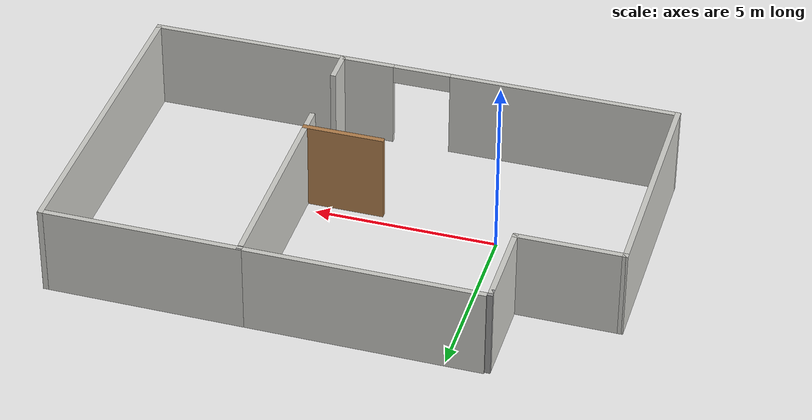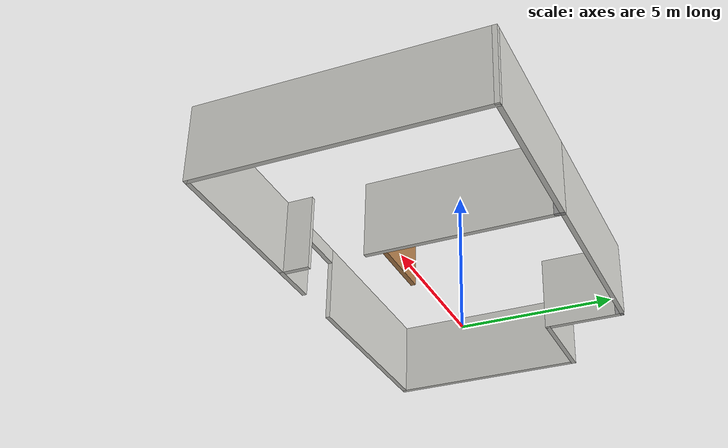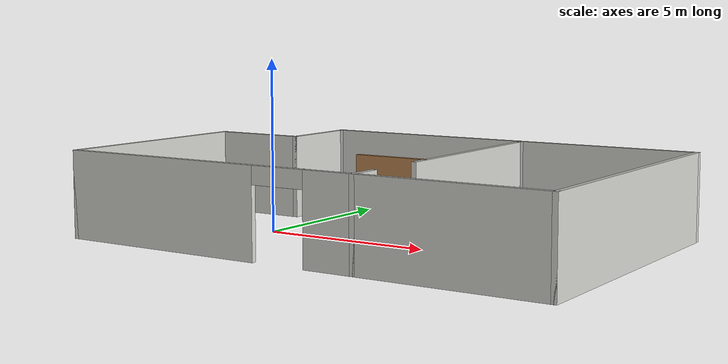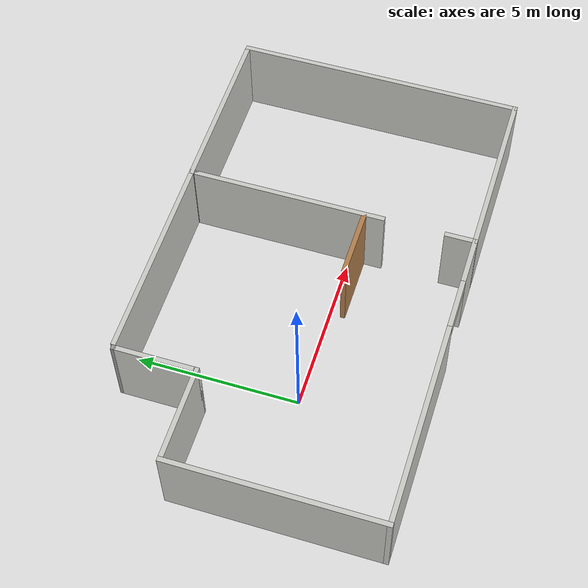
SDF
<?xml version='1.0'?>
<sdf version='1.6'>
  <model name='Sala'>
    <pose frame=''>3.38391 0.662582 0 0 -0 0</pose>
    <link name='Wall_0'>
      <pose frame=''>-2.675 -4.425 0 0 -0 0</pose>
      <visual name='Wall_0_Visual_0'>
        <pose frame=''>-1.56963 0 1.25 0 -0 0</pose>
        <geometry>
          <box>
            <size>6.36074 0.15 2.5</size>
          </box>
        </geometry>
        <material>
          <script>
            <uri>file://media/materials/scripts/gazebo.material</uri>
            <name>Gazebo/CeilingTiled</name>
          </script>
          <ambient>1 1 1 1</ambient>
        </material>
      </visual>
      <collision name='Wall_0_Collision_0'>
        <geometry>
          <box>
            <size>6.36074 0.15 2.5</size>
          </box>
        </geometry>
        <pose frame=''>-1.56963 0 1.25 0 -0 0</pose>
      </collision>
      <visual name='Wall_0_Visual_1'>
        <pose frame=''>3.98037 0 1.25 0 -0 0</pose>
        <geometry>
          <box>
            <size>1.53926 0.15 2.5</size>
          </box>
        </geometry>
        <material>
          <script>
            <uri>file://media/materials/scripts/gazebo.material</uri>
            <name>Gazebo/CeilingTiled</name>
          </script>
          <ambient>1 1 1 1</ambient>
        </material>
      </visual>
      <collision name='Wall_0_Collision_1'>
        <geometry>
          <box>
            <size>1.53926 0.15 2.5</size>
          </box>
        </geometry>
        <pose frame=''>3.98037 0 1.25 0 -0 0</pose>
      </collision>
      <visual name='Wall_0_Visual_2'>
        <pose frame=''>2.41074 0 2.25 0 -0 0</pose>
        <geometry>
          <box>
            <size>1.6 0.15 0.5</size>
          </box>
        </geometry>
        <material>
          <script>
            <uri>file://media/materials/scripts/gazebo.material</uri>
            <name>Gazebo/CeilingTiled</name>
          </script>
          <ambient>1 1 1 1</ambient>
        </material>
      </visual>
      <collision name='Wall_0_Collision_2'>
        <geometry>
          <box>
            <size>1.6 0.15 0.5</size>
          </box>
        </geometry>
        <pose frame=''>2.41074 0 2.25 0 -0 0</pose>
      </collision>
    </link>
    <link name='Wall_13'>
      <collision name='Wall_13_Collision'>
        <geometry>
          <box>
            <size>6 0.15 2.5</size>
          </box>
        </geometry>
        <pose frame=''>0 0 1.25 0 -0 0</pose>
      </collision>
      <visual name='Wall_13_Visual'>
        <pose frame=''>0 0 1.25 0 -0 0</pose>
        <geometry>
          <box>
            <size>6 0.15 2.5</size>
          </box>
        </geometry>
        <material>
          <script>
            <uri>file://media/materials/scripts/gazebo.material</uri>
            <name>Gazebo/CeilingTiled</name>
          </script>
          <ambient>1 1 1 1</ambient>
        </material>
      </visual>
      <pose frame=''>2 1.33 0 0 -0 1.5708</pose>
    </link>
    <link name='Wall_17'>
      <collision name='Wall_17_Collision'>
        <geometry>
          <box>
            <size>9 0.15 2.5</size>
          </box>
        </geometry>
        <pose frame=''>0 0 1.25 0 -0 0</pose>
      </collision>
      <visual name='Wall_17_Visual'>
        <pose frame=''>0 0 1.25 0 -0 0</pose>
        <geometry>
          <box>
            <size>9 0.15 2.5</size>
          </box>
        </geometry>
        <material>
          <script>
            <uri>file://media/materials/scripts/gazebo.material</uri>
            <name>Gazebo/CeilingTiled</name>
          </script>
          <ambient>1 1 1 1</ambient>
        </material>
      </visual>
      <pose frame=''>7.35 0 0 0 -0 1.5708</pose>
    </link>
    <link name='Wall_18'>
      <collision name='Wall_18_Collision'>
        <geometry>
          <box>
            <size>5.5 0.15 2.5</size>
          </box>
        </geometry>
        <pose frame=''>0 0 1.25 0 -0 0</pose>
      </collision>
      <visual name='Wall_18_Visual'>
        <pose frame=''>0 0 1.25 0 -0 0</pose>
        <geometry>
          <box>
            <size>5.5 0.15 2.5</size>
          </box>
        </geometry>
        <material>
          <script>
            <uri>file://media/materials/scripts/gazebo.material</uri>
            <name>Gazebo/CeilingTiled</name>
          </script>
          <ambient>1 1 1 1</ambient>
        </material>
      </visual>
      <pose frame=''>4.675 4.425 0 0 -0 3.14159</pose>
    </link>
    <link name='Wall_19'>
      <collision name='Wall_19_Collision'>
        <geometry>
          <box>
            <size>0.32 0.15 2.5</size>
          </box>
        </geometry>
        <pose frame=''>0 0 1.25 0 -0 0</pose>
      </collision>
      <visual name='Wall_19_Visual'>
        <pose frame=''>0 0 1.25 0 -0 0</pose>
        <geometry>
          <box>
            <size>0.32 0.15 2.5</size>
          </box>
        </geometry>
        <material>
          <script>
            <uri>file://media/materials/scripts/gazebo.material</uri>
            <name>Gazebo/Grey</name>
          </script>
          <ambient>1 1 1 1</ambient>
        </material>
      </visual>
      <pose frame=''>2 4.34 0 0 0 -1.5708</pose>
    </link>
    <link name='Wall_21'>
      <collision name='Wall_21_Collision'>
        <geometry>
          <box>
            <size>6.5 0.15 2.5</size>
          </box>
        </geometry>
        <pose frame=''>0 0 1.25 0 -0 0</pose>
      </collision>
      <visual name='Wall_21_Visual'>
        <pose frame=''>0 0 1.25 0 -0 0</pose>
        <geometry>
          <box>
            <size>6.5 0.15 2.5</size>
          </box>
        </geometry>
        <material>
          <script>
            <uri>file://media/materials/scripts/gazebo.material</uri>
            <name>Gazebo/CeilingTiled</name>
          </script>
          <ambient>1 1 1 1</ambient>
        </material>
      </visual>
      <pose frame=''>-7.35 -1.25 0 0 -0 1.5708</pose>
    </link>
    <link name='Wall_22'>
      <collision name='Wall_22_Collision'>
        <geometry>
          <box>
            <size>3 0.15 2.5</size>
          </box>
        </geometry>
        <pose frame=''>0 0 1.25 0 -0 0</pose>
      </collision>
      <visual name='Wall_22_Visual'>
        <pose frame=''>0 0 1.25 0 -0 0</pose>
        <geometry>
          <box>
            <size>3 0.15 2.5</size>
          </box>
        </geometry>
        <material>
          <script>
            <uri>file://media/materials/scripts/gazebo.material</uri>
            <name>Gazebo/CeilingTiled</name>
          </script>
          <ambient>1 1 1 1</ambient>
        </material>
      </visual>
      <pose frame=''>-5.925 1.925 0 0 -0 0</pose>
    </link>
    <link name='Wall_23'>
      <collision name='Wall_23_Collision'>
        <geometry>
          <box>
            <size>2.5 0.15 2.5</size>
          </box>
        </geometry>
        <pose frame=''>0 0 1.25 0 -0 0</pose>
      </collision>
      <visual name='Wall_23_Visual'>
        <pose frame=''>0 0 1.25 0 -0 0</pose>
        <geometry>
          <box>
            <size>2.5 0.15 2.5</size>
          </box>
        </geometry>
        <material>
          <script>
            <uri>file://media/materials/scripts/gazebo.material</uri>
            <name>Gazebo/CeilingTiled</name>
          </script>
          <ambient>1 1 1 1</ambient>
        </material>
      </visual>
      <pose frame=''>-4.5 3.1 0 0 -0 1.5708</pose>
    </link>
    <link name='Wall_24'>
      <collision name='Wall_24_Collision'>
        <geometry>
          <box>
            <size>0.25 0.15 2.5</size>
          </box>
        </geometry>
        <pose frame=''>0 0 1.25 0 -0 0</pose>
      </collision>
      <visual name='Wall_24_Visual'>
        <pose frame=''>0 0 1.25 0 -0 0</pose>
        <geometry>
          <box>
            <size>0.25 0.15 2.5</size>
          </box>
        </geometry>
        <material>
          <script>
            <uri>file://media/materials/scripts/gazebo.material</uri>
            <name>Gazebo/Grey</name>
          </script>
          <ambient>1 1 1 1</ambient>
        </material>
      </visual>
      <pose frame=''>-4.5 4.325 0 0 -0 1.5708</pose>
    </link>
    <link name='Wall_27'>
      <collision name='Wall_27_Collision'>
        <geometry>
          <box>
            <size>6.5 0.15 2.5</size>
          </box>
        </geometry>
        <pose frame=''>0 0 1.25 0 -0 0</pose>
      </collision>
      <visual name='Wall_27_Visual'>
        <pose frame=''>0 0 1.25 0 -0 0</pose>
        <geometry>
          <box>
            <size>6.5 0.15 2.5</size>
          </box>
        </geometry>
        <material>
          <script>
            <uri>file://media/materials/scripts/gazebo.material</uri>
            <name>Gazebo/CeilingTiled</name>
          </script>
          <ambient>1 1 1 1</ambient>
        </material>
      </visual>
      <pose frame=''>-1.175 4.425 0 0 -0 3.14159</pose>
    </link>
    <link name='Wall_29'>
      <collision name='Wall_29_Collision'>
        <geometry>
          <box>
            <size>2.25 0.15 2.5</size>
          </box>
        </geometry>
        <pose frame=''>0 0 1.25 0 -0 0</pose>
      </collision>
      <visual name='Wall_29_Visual'>
        <pose frame=''>0 0 1.25 0 -0 0</pose>
        <geometry>
          <box>
            <size>2.25 0.15 2.5</size>
          </box>
        </geometry>
        <material>
          <script>
            <uri>file://media/materials/scripts/gazebo.material</uri>
            <name>Gazebo/Wood</name>
          </script>
          <ambient>1 1 1 1</ambient>
        </material>
      </visual>
      <pose frame=''>0.949972 -1.03906 0 0 -0 3.14159</pose>
    </link>
    <link name='Wall_6'>
      <collision name='Wall_6_Collision'>
        <geometry>
          <box>
            <size>5.5 0.15 2.5</size>
          </box>
        </geometry>
        <pose frame=''>0 0 1.25 0 -0 0</pose>
      </collision>
      <visual name='Wall_6_Visual'>
        <pose frame=''>0 0 1.25 0 -0 0</pose>
        <geometry>
          <box>
            <size>5.5 0.15 2.5</size>
          </box>
        </geometry>
        <material>
          <script>
            <uri>file://media/materials/scripts/gazebo.material</uri>
            <name>Gazebo/CeilingTiled</name>
          </script>
          <ambient>1 1 1 1</ambient>
        </material>
      </visual>
      <pose frame=''>4.675 -4.425 0 0 -0 0</pose>
    </link>
    <link name='Wall_9'>
      <collision name='Wall_9_Collision'>
        <geometry>
          <box>
            <size>1 0.15 2.5</size>
          </box>
        </geometry>
        <pose frame=''>0 0 1.25 0 -0 0</pose>
      </collision>
      <visual name='Wall_9_Visual'>
        <pose frame=''>0 0 1.25 0 -0 0</pose>
        <geometry>
          <box>
            <size>1 0.15 2.5</size>
          </box>
        </geometry>
        <material>
          <script>
            <uri>file://media/materials/scripts/gazebo.material</uri>
            <name>Gazebo/CeilingTiled</name>
          </script>
          <ambient>1 0.764706 0.305882 1</ambient>
        </material>
      </visual>
      <pose frame=''>2 -4 0 0 -0 1.5708</pose>
    </link>
    <static>1</static>
  </model>
</sdf>
